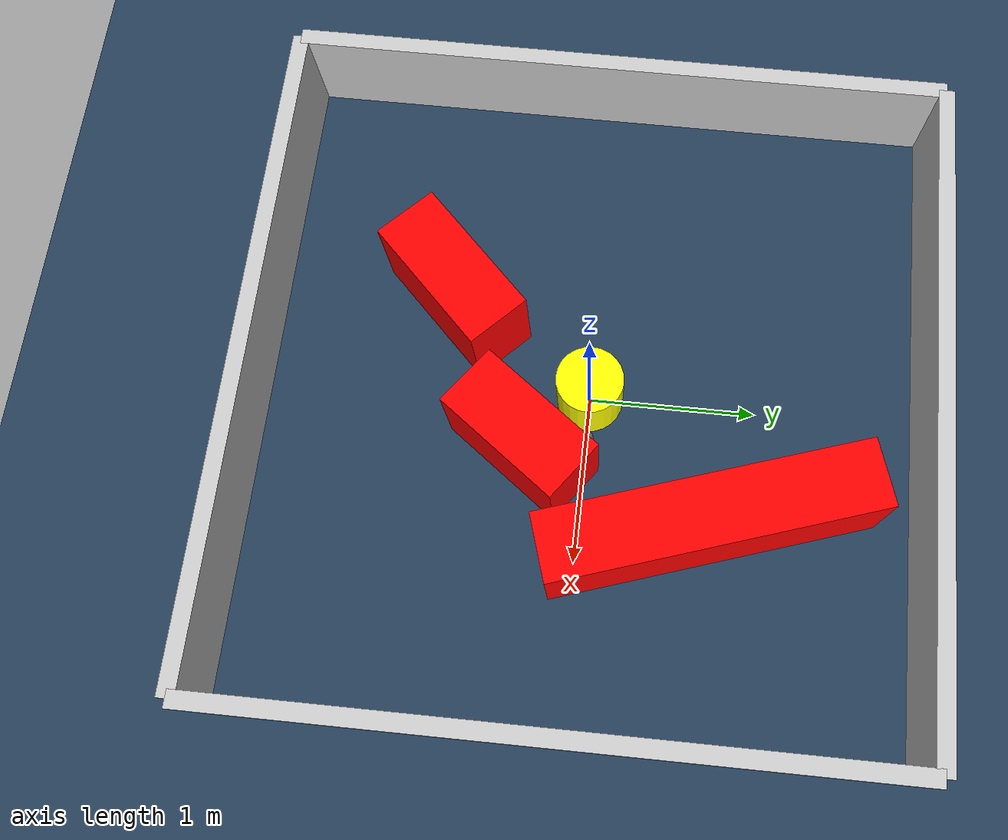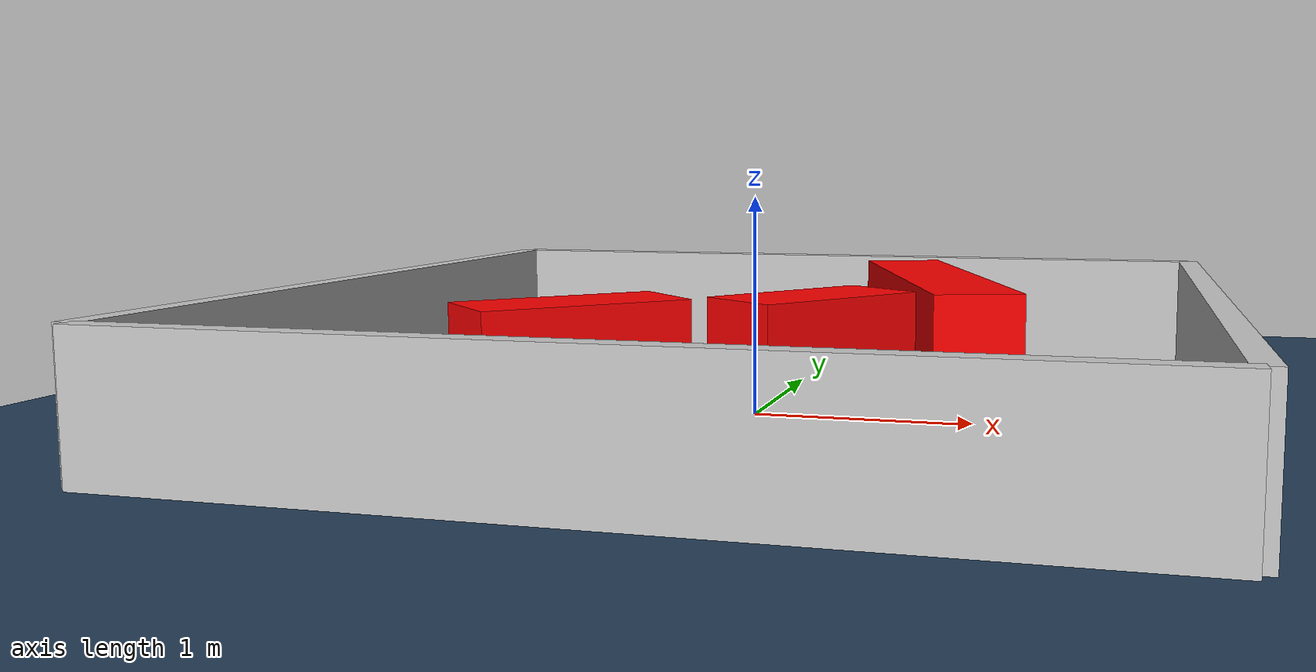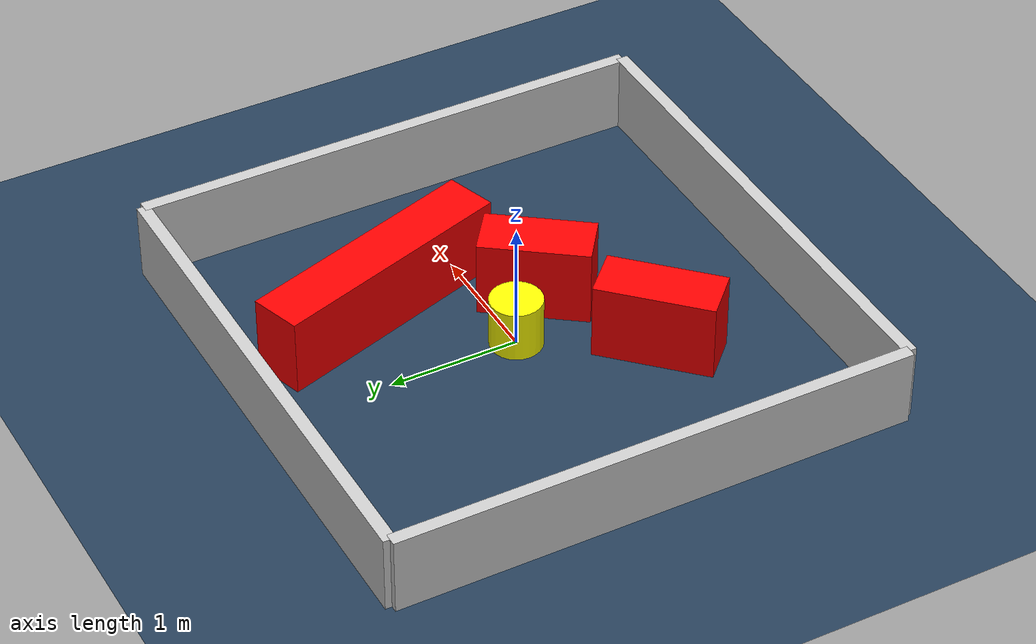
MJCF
<?xml version="1.0" ?>
<mujoco model="generated_environment">
  <option timestep="0.01" integrator="RK4" cone="elliptic"/>
  <default>
    <geom density="1"/>
  </default>
  <asset>
    <texture builtin="gradient" height="3072" rgb1="0.3 0.5 0.7" rgb2="0 0 0" type="skybox" width="512"/>
    <texture builtin="checker" height="300" mark="edge" markrgb="0.8 0.8 0.8" name="groundplane" rgb1="0.2 0.3 0.4" rgb2="0.1 0.2 0.3" type="2d" width="300"/>
    <material name="groundplane" reflectance="0.2" texrepeat="5 5" texture="groundplane" texuniform="true"/>
    <material name="robot" rgba="0.0 1.0 0.0 1"/>
  </asset>
  <worldbody>
    <light dir="0 0 -1" directional="true" pos="0 0 1.5"/>
    <geom condim="4" friction="1.0 0.005 0.001" material="groundplane" name="floor" size="0 0 0.05" type="plane"/>
    <body name="walls">
      <geom name="wall_1" condim="4" pos="-2.0 0.0 0.3" rgba="0.800000011920929 0.800000011920929 0.800000011920929 1.0" size="0.05 2.0 0.3" type="box"/>
      <geom name="wall_2" condim="4" pos="2.0 0.0 0.3" rgba="0.800000011920929 0.800000011920929 0.800000011920929 1.0" size="0.05 2.0 0.3" type="box"/>
      <geom name="wall_3" condim="4" pos="0.0 -2.0 0.3" rgba="0.800000011920929 0.800000011920929 0.800000011920929 1.0" size="2.0 0.05 0.3" type="box"/>
      <geom name="wall_4" condim="4" pos="0.0 2.0 0.3" rgba="0.800000011920929 0.800000011920929 0.800000011920929 1.0" size="2.0 0.05 0.3" type="box"/>
    </body>
    <body name="robot">
      <joint name="joint_x" type="slide" pos="0 0 0" axis="1 0 0"/>
      <joint name="joint_y" type="slide" pos="0 0 0" axis="0 1 0"/>
      <geom name="robot" type="sphere" pos="0.3 0.0 0.2" size="0.05" mass="5." friction="1.0 0.005 0.0001" condim="4" rgba="0.5 0.5 0.5 1.0"/>
      <site name="sensor_ball"/>
    </body>
    <body name="obstacle_movable_1">
      <geom name="obstacle_movable_1" condim="4" pos="0.0 0.0 0.2" euler="0 0 0.0" friction="1.0 0.005 0.001" rgba="1.0 1.0 0.0 1.0" size="0.2 0.2 0.0" type="cylinder" mass="0.1"/>
      <joint type="free"/>
    </body>
    <body name="obstacle_2_static">
      <geom name="obstacle_2_static" condim="4" pos="-0.5489000207345092 -0.8641642449103953 0.3" euler="0 0 45.19271703655167" friction="1.0 0.005 0.001" rgba="1 0 0 1" size="0.44881379844462765 0.2 0.3" type="box"/>
    </body>
    <body name="obstacle_3_static">
      <geom name="obstacle_3_static" condim="4" pos="0.7364094161014587 0.7461456718458217 0.3" euler="0 0 107.98717420325147" friction="1.0 0.005 0.001" rgba="1 0 0 1" size="0.980572740953283 0.2 0.3" type="box"/>
    </body>
    <body name="obstacle_4_static">
      <geom name="obstacle_4_static" condim="4" pos="0.3514480442713097 -0.36158446797156274 0.3" euler="0 0 53.62325755185006" friction="1.0 0.005 0.001" rgba="1 0 0 1" size="0.4168096437644503 0.2 0.3" type="box"/>
    </body>
  </worldbody>
  <actuator>
    <motor name="actuator_x" joint="joint_x" gear="1" ctrlrange="-1 1"/>
    <motor name="actuator_y" joint="joint_y" gear="1" ctrlrange="-1 1"/>
  </actuator>
</mujoco>
